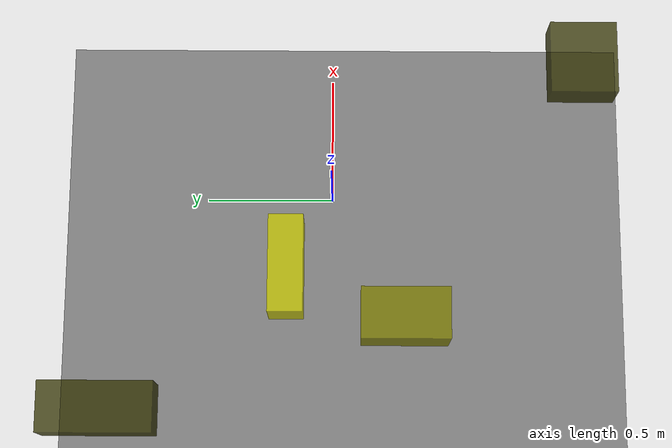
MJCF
<?xml version="1.0"?>
<mujoco model="obstacle_scene">
  <compiler angle="radian" coordinate="local"/>
  <option timestep="0.001" gravity="0 0 -9.81"/>

  <asset>
    <material name="obstacle_mat" rgba="0.8 0.8 0.0 0.8"/>
    <material name="ground_mat" rgba="0.5 0.5 0.5 1"/>
  </asset>

  <worldbody>
    <!-- Ground plane -->
    <geom name="ground" type="plane" size="3 3 0.1" material="ground_mat"/>

    <!-- Obstacles -->
    <body name="obstacle_0" pos="-0.939815 0.741647 1.090097">
      <geom name="obs_0" type="box" size="0.082763 0.185269 0.072847" rgba="0.2 0.2 0.0 0.8"/>
    </body>
    <body name="obstacle_1" pos="-0.531277 -0.275955 0.402758">
      <geom name="obs_1" type="box" size="0.095988 0.165094 0.104024" rgba="0.5 0.5 0.0 0.8"/>
    </body>
    <body name="obstacle_2" pos="-0.448115 0.147736 0.944627">
      <geom name="obs_2" type="box" size="0.164941 0.058953 0.085394" rgba="0.8 0.8 0.0 0.8"/>
    </body>
    <body name="obstacle_3" pos="0.341861 -0.901015 0.756982">
      <geom name="obs_3" type="box" size="0.129666 0.118433 0.067203" rgba="0.2 0.2 0.0 0.8"/>
    </body>
  </worldbody>
</mujoco>
